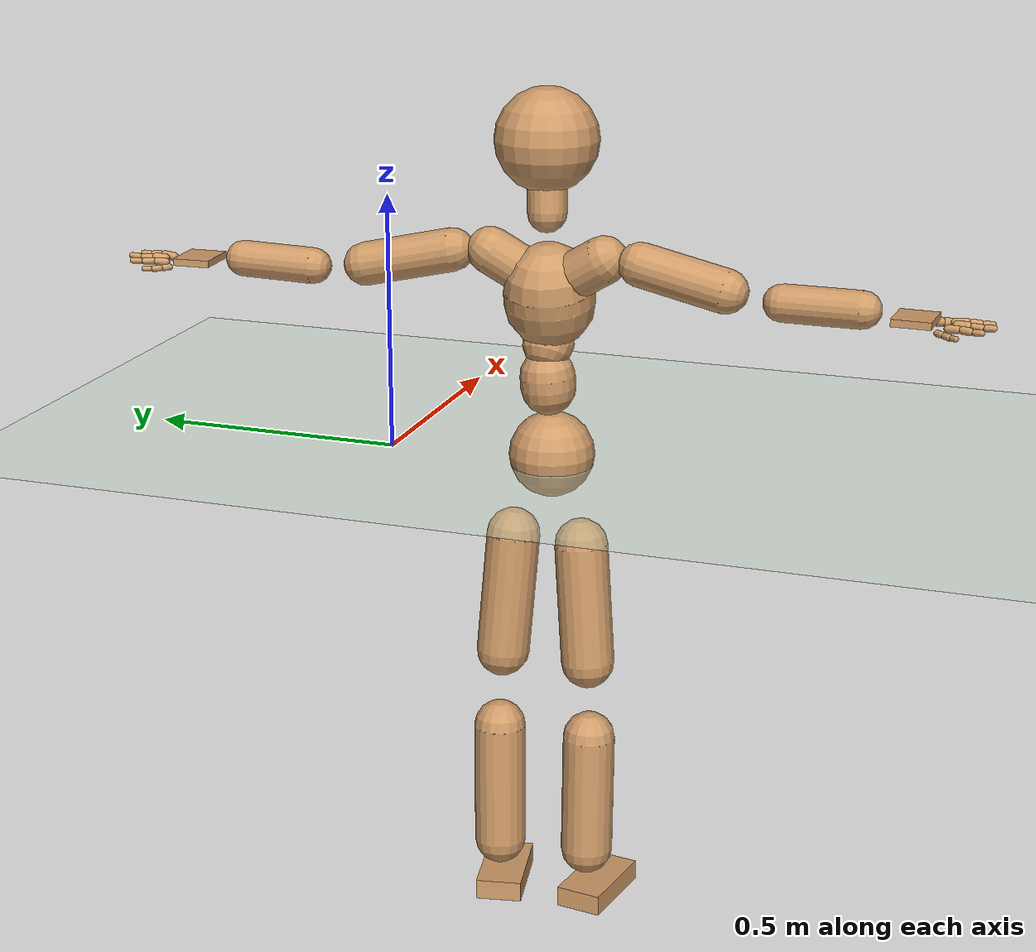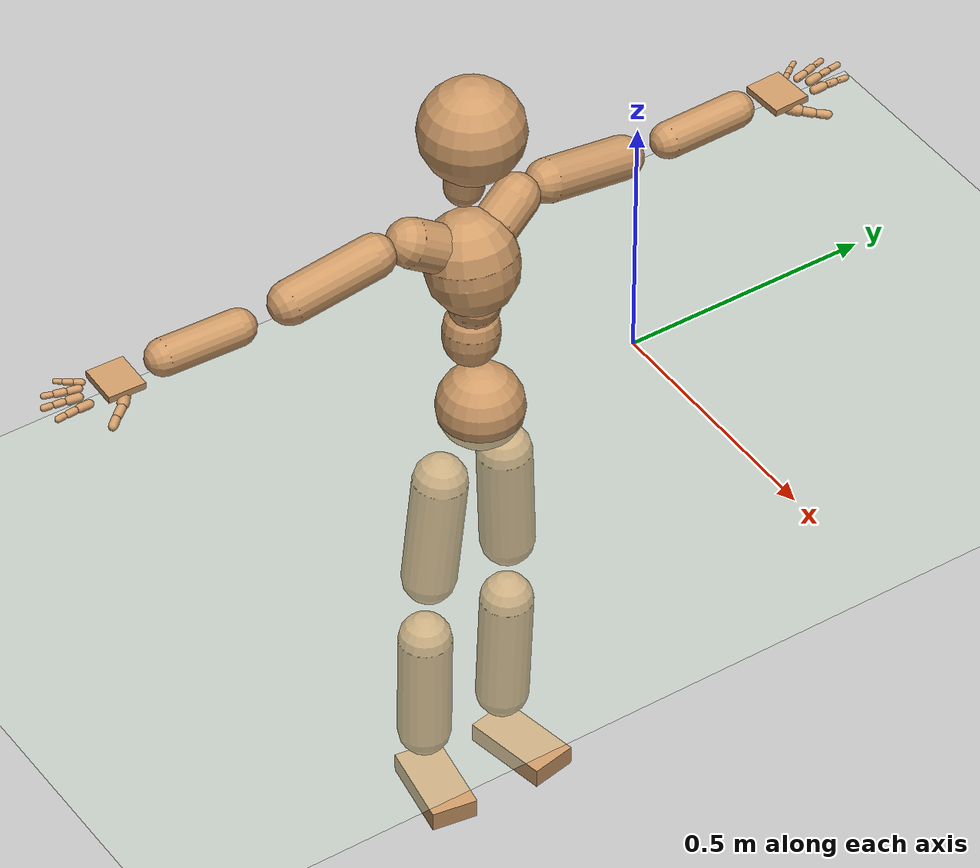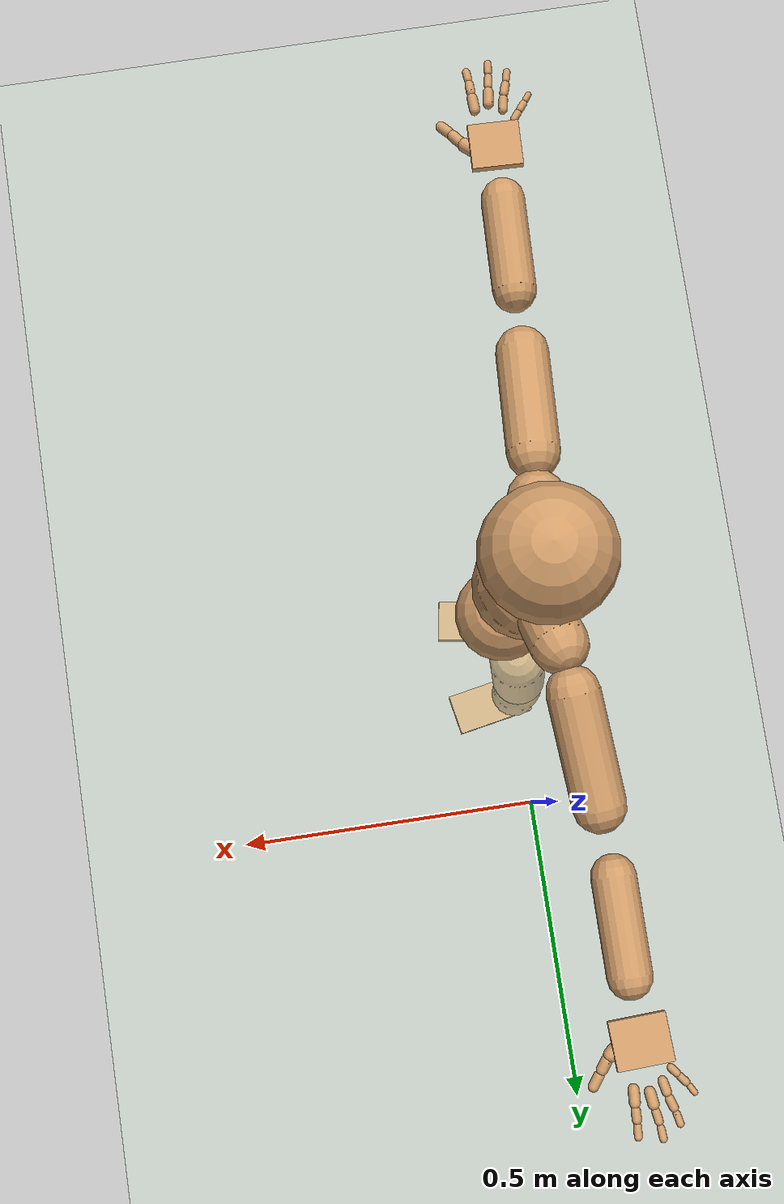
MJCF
<mujoco model="humanoid">
  <compiler coordinate="local" angle="radian"/>
  <default>
    <joint damping="0.0" armature="0.01" stiffness="0.0" limited="true"/>
    <geom conaffinity="1" condim="3" contype="7" margin="0.001" rgba="0.8 0.6 .4 1"/>
  </default>
  <asset>
    <texture type="skybox" builtin="gradient" rgb1=".4 .5 .6" rgb2="0 0 0" width="100" height="100"/>
    <texture builtin="flat" height="1278" mark="cross" markrgb="1 1 1" name="texgeom" random="0.01" rgb1="0.8 0.6 0.4" rgb2="0.8 0.6 0.4" type="cube" width="127"/>
    <texture builtin="checker" height="100" name="texplane" rgb1="0 0 0" rgb2="0.8 0.8 0.8" type="2d" width="100"/>
    <material name="MatPlane" reflectance="0.5" shininess="1" specular="1" texrepeat="60 60" texture="texplane"/>
    <material name="geom" texture="texgeom" texuniform="true"/>
  </asset>
  <worldbody>
    <light cutoff="100" diffuse="1 1 1" dir="-0 0 -1.3" directional="true" exponent="1" pos="0 0 1.3" specular=".1 .1 .1"/>
    <geom conaffinity="1" condim="3" name="floor" pos="0 0 0" rgba="0.8 0.9 0.8 1" size="100 100 .2" type="plane" material="MatPlane"/>
    <body name="Pelvis" pos="0.0003 -0.3318 0.0183">
      <freejoint name="Pelvis"/>
      <geom type="sphere" contype="1" conaffinity="1" density="500" size="0.0830" pos="0.0000 0.0000 0.0000" name="Pelvis"/>
      <body name="L_Hip" pos="-0.0221 0.0638 -0.0839">
        <joint name="L_Hip_x" type="hinge" pos="0 0 0" axis="1 0 0" stiffness="800" damping="80" armature="0.02" range="-180.0000 180.0000"/>
        <joint name="L_Hip_y" type="hinge" pos="0 0 0" axis="0 1 0" stiffness="800" damping="80" armature="0.02" range="-180.0000 180.0000"/>
        <joint name="L_Hip_z" type="hinge" pos="0 0 0" axis="0 0 1" stiffness="800" damping="80" armature="0.02" range="-180.0000 180.0000"/>
        <geom type="capsule" contype="1" conaffinity="1" density="500" fromto="-0.0048 0.0056 -0.0801 -0.0192 0.0225 -0.3202" size="0.0523" name="L_Hip"/>
        <body name="L_Knee" pos="-0.024 0.0281 -0.4003">
          <joint name="L_Knee_x" type="hinge" pos="0 0 0" axis="1 0 0" stiffness="800" damping="80" armature="0.02" range="-180.0000 180.0000"/>
          <joint name="L_Knee_y" type="hinge" pos="0 0 0" axis="0 1 0" stiffness="800" damping="80" armature="0.02" range="-180.0000 180.0000"/>
          <joint name="L_Knee_z" type="hinge" pos="0 0 0" axis="0 0 1" stiffness="800" damping="80" armature="0.02" range="-180.0000 180.0000"/>
          <geom type="capsule" contype="1" conaffinity="1" density="500" fromto="-0.0030 -0.0012 -0.0819 -0.0121 -0.0047 -0.3276" size="0.0512" name="L_Knee"/>
          <body name="L_Ankle" pos="-0.0151 -0.0059 -0.4095">
            <joint name="L_Ankle_x" type="hinge" pos="0 0 0" axis="1 0 0" stiffness="800" damping="80" armature="0.02" range="-180.0000 180.0000"/>
            <joint name="L_Ankle_y" type="hinge" pos="0 0 0" axis="0 1 0" stiffness="800" damping="80" armature="0.02" range="-180.0000 180.0000"/>
            <joint name="L_Ankle_z" type="hinge" pos="0 0 0" axis="0 0 1" stiffness="800" damping="80" armature="0.02" range="-180.0000 180.0000"/>
            <geom type="box" contype="1" conaffinity="1" density="500" pos="0.0554 0.0104 -0.0240" size="0.0871 0.0456 0.0202" quat="0.9957 0.0000 0.0000 0.0931" name="L_Ankle"/>
            <body name="L_Toe" pos="0.1107 0.0209 -0.0481">
              <joint name="L_Toe_x" type="hinge" pos="0 0 0" axis="1 0 0" stiffness="500" damping="50" armature="0.02" range="-180.0000 180.0000"/>
              <joint name="L_Toe_y" type="hinge" pos="0 0 0" axis="0 1 0" stiffness="500" damping="50" armature="0.02" range="-180.0000 180.0000"/>
              <joint name="L_Toe_z" type="hinge" pos="0 0 0" axis="0 0 1" stiffness="500" damping="50" armature="0.02" range="-180.0000 180.0000"/>
              <geom type="box" contype="1" conaffinity="1" density="500" pos="0.0000 0.0000 0.0239" size="0.0009 0.0023 0.001" quat="0.9950 0.0000 0.0000 0.1000" name="L_Toe"/>
            </body>
          </body>
        </body>
      </body>
      <body name="R_Hip" pos="-0.0238 -0.0631 -0.0907">
        <joint name="R_Hip_x" type="hinge" pos="0 0 0" axis="1 0 0" stiffness="800" damping="80" armature="0.02" range="-180.0000 180.0000"/>
        <joint name="R_Hip_y" type="hinge" pos="0 0 0" axis="0 1 0" stiffness="800" damping="80" armature="0.02" range="-180.0000 180.0000"/>
        <joint name="R_Hip_z" type="hinge" pos="0 0 0" axis="0 0 1" stiffness="800" damping="80" armature="0.02" range="-180.0000 180.0000"/>
        <geom type="capsule" contype="1" conaffinity="1" density="500" fromto="-0.0036 -0.0063 -0.0792 -0.0145 -0.0251 -0.3167" size="0.0521" name="R_Hip"/>
        <body name="R_Knee" pos="-0.0181 -0.0314 -0.3958">
          <joint name="R_Knee_x" type="hinge" pos="0 0 0" axis="1 0 0" stiffness="800" damping="80" armature="0.02" range="-180.0000 180.0000"/>
          <joint name="R_Knee_y" type="hinge" pos="0 0 0" axis="0 1 0" stiffness="800" damping="80" armature="0.02" range="-180.0000 180.0000"/>
          <joint name="R_Knee_z" type="hinge" pos="0 0 0" axis="0 0 1" stiffness="800" damping="80" armature="0.02" range="-180.0000 180.0000"/>
          <geom type="capsule" contype="1" conaffinity="1" density="500" fromto="-0.0022 0.0003 -0.0802 -0.0088 0.0010 -0.3208" size="0.0512" name="R_Knee"/>
          <body name="R_Ankle" pos="-0.0109 0.0013 -0.401">
            <joint name="R_Ankle_x" type="hinge" pos="0 0 0" axis="1 0 0" stiffness="800" damping="80" armature="0.02" range="-180.0000 180.0000"/>
            <joint name="R_Ankle_y" type="hinge" pos="0 0 0" axis="0 1 0" stiffness="800" damping="80" armature="0.02" range="-180.0000 180.0000"/>
            <joint name="R_Ankle_z" type="hinge" pos="0 0 0" axis="0 0 1" stiffness="800" damping="80" armature="0.02" range="-180.0000 180.0000"/>
            <geom type="box" contype="1" conaffinity="1" density="500" pos="0.0521 -0.0082 -0.0258" size="0.0871 0.0455 0.0202" quat="0.9969 0.0000 0.0000 -0.0784" name="R_Ankle"/>
            <body name="R_Toe" pos="0.1042 -0.0165 -0.0517">
              <joint name="R_Toe_x" type="hinge" pos="0 0 0" axis="1 0 0" stiffness="500" damping="50" armature="0.02" range="-180.0000 180.0000"/>
              <joint name="R_Toe_y" type="hinge" pos="0 0 0" axis="0 1 0" stiffness="500" damping="50" armature="0.02" range="-180.0000 180.0000"/>
              <joint name="R_Toe_z" type="hinge" pos="0 0 0" axis="0 0 1" stiffness="500" damping="50" armature="0.02" range="-180.0000 180.0000"/>
              <geom type="box" contype="1" conaffinity="1" density="500" pos="0.0000 0.0000 0.0257" size="0.0009 0.0023 0.001" quat="0.9977 0.0000 0.0000 -0.0678" name="R_Toe"/>
            </body>
          </body>
        </body>
      </body>
      <body name="Torso" pos="-0.0246 -0.0044 0.0947">
        <joint name="Torso_x" type="hinge" pos="0 0 0" axis="1 0 0" stiffness="1000" damping="100" armature="0.02" range="-180.0000 180.0000"/>
        <joint name="Torso_y" type="hinge" pos="0 0 0" axis="0 1 0" stiffness="1000" damping="100" armature="0.02" range="-180.0000 180.0000"/>
        <joint name="Torso_z" type="hinge" pos="0 0 0" axis="0 0 1" stiffness="1000" damping="100" armature="0.02" range="-180.0000 180.0000"/>
        <geom type="capsule" contype="1" conaffinity="1" density="500" fromto="-0.0041 0.0044 0.0688 -0.0027 0.0029 0.0458" size="0.0529" name="Torso"/>
        <body name="Spine" pos="-0.0068 0.0073 0.1146">
          <joint name="Spine_x" type="hinge" pos="0 0 0" axis="1 0 0" stiffness="1000" damping="100" armature="0.02" range="-180.0000 180.0000"/>
          <joint name="Spine_y" type="hinge" pos="0 0 0" axis="0 1 0" stiffness="1000" damping="100" armature="0.02" range="-180.0000 180.0000"/>
          <joint name="Spine_z" type="hinge" pos="0 0 0" axis="0 0 1" stiffness="1000" damping="100" armature="0.02" range="-180.0000 180.0000"/>
          <geom type="capsule" contype="1" conaffinity="1" density="500" fromto="0.0132 -0.0025 0.0246 0.0088 -0.0017 0.0164" size="0.0495" name="Spine"/>
          <body name="Chest" pos="0.0219 -0.0042 0.0411">
            <joint name="Chest_x" type="hinge" pos="0 0 0" axis="1 0 0" stiffness="1000" damping="100" armature="0.02" range="-180.0000 180.0000"/>
            <joint name="Chest_y" type="hinge" pos="0 0 0" axis="0 1 0" stiffness="1000" damping="100" armature="0.02" range="-180.0000 180.0000"/>
            <joint name="Chest_z" type="hinge" pos="0 0 0" axis="0 0 1" stiffness="1000" damping="100" armature="0.02" range="-180.0000 180.0000"/>
            <geom type="capsule" contype="1" conaffinity="1" density="500" fromto="-0.0182 -0.0011 0.0835 -0.0121 -0.0008 0.0557" size="0.0866" name="Chest"/>
            <body name="Neck" pos="-0.0397 -0.0045 0.1966">
              <joint name="Neck_x" type="hinge" pos="0 0 0" axis="1 0 0" stiffness="500" damping="50" armature="0.02" range="-180.0000 180.0000"/>
              <joint name="Neck_y" type="hinge" pos="0 0 0" axis="0 1 0" stiffness="500" damping="50" armature="0.02" range="-180.0000 180.0000"/>
              <joint name="Neck_z" type="hinge" pos="0 0 0" axis="0 0 1" stiffness="500" damping="50" armature="0.02" range="-180.0000 180.0000"/>
              <geom type="capsule" contype="1" conaffinity="1" density="500" fromto="0.0040 0.0016 0.0329 0.0159 0.0064 0.1316" size="0.0372" name="Neck"/>
              <body name="Head" pos="0.0199 0.008 0.1646">
                <joint name="Head_x" type="hinge" pos="0 0 0" axis="1 0 0" stiffness="500" damping="50" armature="0.02" range="-180.0000 180.0000"/>
                <joint name="Head_y" type="hinge" pos="0 0 0" axis="0 1 0" stiffness="500" damping="50" armature="0.02" range="-180.0000 180.0000"/>
                <joint name="Head_z" type="hinge" pos="0 0 0" axis="0 0 1" stiffness="500" damping="50" armature="0.02" range="-180.0000 180.0000"/>
                <geom type="sphere" contype="1" conaffinity="1" density="500" size="0.0980" pos="0.0000 0.0000 0.0000" name="Head"/>
              </body>
            </body>
            <body name="L_Thorax" pos="-0.0231 0.0456 0.1126">
              <joint name="L_Thorax_x" type="hinge" pos="0 0 0" axis="1 0 0" stiffness="500" damping="50" armature="0.02" range="-180.0000 180.0000"/>
              <joint name="L_Thorax_y" type="hinge" pos="0 0 0" axis="0 1 0" stiffness="500" damping="50" armature="0.02" range="-180.0000 180.0000"/>
              <joint name="L_Thorax_z" type="hinge" pos="0 0 0" axis="0 0 1" stiffness="500" damping="50" armature="0.02" range="-180.0000 180.0000"/>
              <geom type="capsule" contype="1" conaffinity="1" density="500" fromto="-0.0036 0.0155 0.0097 -0.0145 0.0621 0.0389" size="0.0446" name="L_Thorax"/>
              <body name="L_Shoulder" pos="-0.0181 0.0776 0.0486">
                <joint name="L_Shoulder_x" type="hinge" pos="0 0 0" axis="1 0 0" stiffness="500" damping="50" armature="0.02" range="-180.0000 180.0000"/>
                <joint name="L_Shoulder_y" type="hinge" pos="0 0 0" axis="0 1 0" stiffness="500" damping="50" armature="0.02" range="-180.0000 180.0000"/>
                <joint name="L_Shoulder_z" type="hinge" pos="0 0 0" axis="0 0 1" stiffness="500" damping="50" armature="0.02" range="-180.0000 180.0000"/>
                <geom type="capsule" contype="1" conaffinity="1" density="500" fromto="-0.0052 0.0567 -0.0123 -0.0207 0.2270 -0.0493" size="0.0411" name="L_Shoulder"/>
                <body name="L_Elbow" pos="-0.0259 0.2837 -0.0617">
                  <joint name="L_Elbow_x" type="hinge" pos="0 0 0" axis="1 0 0" stiffness="500" damping="50" armature="0.02" range="-720.0000 720.0000"/>
                  <joint name="L_Elbow_y" type="hinge" pos="0 0 0" axis="0 1 0" stiffness="500" damping="50" armature="0.02" range="-720.0000 720.0000"/>
                  <joint name="L_Elbow_z" type="hinge" pos="0 0 0" axis="0 0 1" stiffness="500" damping="50" armature="0.02" range="-720.0000 720.0000"/>
                  <geom type="capsule" contype="1" conaffinity="1" density="500" fromto="0.0001 0.0487 0.0011 0.0005 0.1949 0.0045" size="0.0344" name="L_Elbow"/>
                  <body name="L_Wrist" pos="0.0006 0.2436 0.0057">
                    <joint name="L_Wrist_x" type="hinge" pos="0 0 0" axis="1 0 0" stiffness="300" damping="30" armature="0.02" range="-180.0000 180.0000"/>
                    <joint name="L_Wrist_y" type="hinge" pos="0 0 0" axis="0 1 0" stiffness="300" damping="30" armature="0.02" range="-180.0000 180.0000"/>
                    <joint name="L_Wrist_z" type="hinge" pos="0 0 0" axis="0 0 1" stiffness="300" damping="30" armature="0.02" range="-180.0000 180.0000"/>
                    <geom type="box" contype="1" conaffinity="1" density="500" pos="-0.0020 0.0457 -0.0088" size="0.0363 0.043 0.0066" quat="0.7226 0.0000 0.0000 -0.6913" name="L_Wrist"/>
                    <body name="L_Index1" pos="0.0189 0.1066 -0.0157">
                      <joint name="L_Index1_x" type="hinge" pos="0 0 0" axis="1 0 0" stiffness="100" damping="10" armature="0.02" range="-180.0000 180.0000"/>
                      <joint name="L_Index1_y" type="hinge" pos="0 0 0" axis="0 1 0" stiffness="100" damping="10" armature="0.02" range="-180.0000 180.0000"/>
                      <joint name="L_Index1_z" type="hinge" pos="0 0 0" axis="0 0 1" stiffness="100" damping="10" armature="0.02" range="-180.0000 180.0000"/>
                      <geom type="capsule" contype="1" conaffinity="1" density="500" fromto="0.0005 0.0063 0.0005 0.0020 0.0253 0.0020" size="0.0084" name="L_Index1"/>
                      <body name="L_Index2" pos="0.0025 0.0316 0.0026">
                        <joint name="L_Index2_x" type="hinge" pos="0 0 0" axis="1 0 0" stiffness="100" damping="10" armature="0.02" range="-180.0000 180.0000"/>
                        <joint name="L_Index2_y" type="hinge" pos="0 0 0" axis="0 1 0" stiffness="100" damping="10" armature="0.02" range="-180.0000 180.0000"/>
                        <joint name="L_Index2_z" type="hinge" pos="0 0 0" axis="0 0 1" stiffness="100" damping="10" armature="0.02" range="-180.0000 180.0000"/>
                        <geom type="capsule" contype="1" conaffinity="1" density="500" fromto="0.0001 0.0045 -0.0003 0.0004 0.0179 -0.0012" size="0.0071" name="L_Index2"/>
                        <body name="L_Index3" pos="0.0004 0.0224 -0.0014">
                          <joint name="L_Index3_x" type="hinge" pos="0 0 0" axis="1 0 0" stiffness="100" damping="10" armature="0.02" range="-180.0000 180.0000"/>
                          <joint name="L_Index3_y" type="hinge" pos="0 0 0" axis="0 1 0" stiffness="100" damping="10" armature="0.02" range="-180.0000 180.0000"/>
                          <joint name="L_Index3_z" type="hinge" pos="0 0 0" axis="0 0 1" stiffness="100" damping="10" armature="0.02" range="-180.0000 180.0000"/>
                          <geom type="capsule" contype="1" conaffinity="1" density="500" fromto="0.0005 0.0049 0.0001 0.0020 0.0195 0.0004" size="0.006" name="L_Index3"/>
                        </body>
                      </body>
                    </body>
                    <body name="L_Middle1" pos="-0.0025 0.1137 -0.0136">
                      <joint name="L_Middle1_x" type="hinge" pos="0 0 0" axis="1 0 0" stiffness="100" damping="10" armature="0.02" range="-180.0000 180.0000"/>
                      <joint name="L_Middle1_y" type="hinge" pos="0 0 0" axis="0 1 0" stiffness="100" damping="10" armature="0.02" range="-180.0000 180.0000"/>
                      <joint name="L_Middle1_z" type="hinge" pos="0 0 0" axis="0 0 1" stiffness="100" damping="10" armature="0.02" range="-180.0000 180.0000"/>
                      <geom type="capsule" contype="1" conaffinity="1" density="500" fromto="-0.0008 0.0060 0.0002 -0.0032 0.0240 0.0009" size="0.0085" name="L_Middle1"/>
                      <body name="L_Middle2" pos="-0.004 0.03 0.0012">
                        <joint name="L_Middle2_x" type="hinge" pos="0 0 0" axis="1 0 0" stiffness="100" damping="10" armature="0.02" range="-180.0000 180.0000"/>
                        <joint name="L_Middle2_y" type="hinge" pos="0 0 0" axis="0 1 0" stiffness="100" damping="10" armature="0.02" range="-180.0000 180.0000"/>
                        <joint name="L_Middle2_z" type="hinge" pos="0 0 0" axis="0 0 1" stiffness="100" damping="10" armature="0.02" range="-180.0000 180.0000"/>
                        <geom type="capsule" contype="1" conaffinity="1" density="500" fromto="-0.0008 0.0047 -0.0001 -0.0030 0.0187 -0.0004" size="0.0065" name="L_Middle2"/>
                        <body name="L_Middle3" pos="-0.0038 0.0234 -0.0004">
                          <joint name="L_Middle3_x" type="hinge" pos="0 0 0" axis="1 0 0" stiffness="100" damping="10" armature="0.02" range="-180.0000 180.0000"/>
                          <joint name="L_Middle3_y" type="hinge" pos="0 0 0" axis="0 1 0" stiffness="100" damping="10" armature="0.02" range="-180.0000 180.0000"/>
                          <joint name="L_Middle3_z" type="hinge" pos="0 0 0" axis="0 0 1" stiffness="100" damping="10" armature="0.02" range="-180.0000 180.0000"/>
                          <geom type="capsule" contype="1" conaffinity="1" density="500" fromto="-0.0004 0.0051 0.0003 -0.0014 0.0203 0.0012" size="0.0059" name="L_Middle3"/>
                        </body>
                      </body>
                    </body>
                    <body name="L_Pinky1" pos="-0.0384 0.0887 -0.0208">
                      <joint name="L_Pinky1_x" type="hinge" pos="0 0 0" axis="1 0 0" stiffness="100" damping="10" armature="0.02" range="-180.0000 180.0000"/>
                      <joint name="L_Pinky1_y" type="hinge" pos="0 0 0" axis="0 1 0" stiffness="100" damping="10" armature="0.02" range="-180.0000 180.0000"/>
                      <joint name="L_Pinky1_z" type="hinge" pos="0 0 0" axis="0 0 1" stiffness="100" damping="10" armature="0.02" range="-180.0000 180.0000"/>
                      <geom type="capsule" contype="1" conaffinity="1" density="500" fromto="-0.0023 0.0029 -0.0001 -0.0093 0.0117 -0.0002" size="0.0061" name="L_Pinky1"/>
                      <body name="L_Pinky2" pos="-0.0116 0.0146 -0.0003">
                        <joint name="L_Pinky2_x" type="hinge" pos="0 0 0" axis="1 0 0" stiffness="100" damping="10" armature="0.02" range="-180.0000 180.0000"/>
                        <joint name="L_Pinky2_y" type="hinge" pos="0 0 0" axis="0 1 0" stiffness="100" damping="10" armature="0.02" range="-180.0000 180.0000"/>
                        <joint name="L_Pinky2_z" type="hinge" pos="0 0 0" axis="0 0 1" stiffness="100" damping="10" armature="0.02" range="-180.0000 180.0000"/>
                        <geom type="capsule" contype="1" conaffinity="1" density="500" fromto="-0.0023 0.0030 -0.0001 -0.0092 0.0118 -0.0006" size="0.006" name="L_Pinky2"/>
                        <body name="L_Pinky3" pos="-0.0115 0.0148 -0.0007">
                          <joint name="L_Pinky3_x" type="hinge" pos="0 0 0" axis="1 0 0" stiffness="100" damping="10" armature="0.02" range="-180.0000 180.0000"/>
                          <joint name="L_Pinky3_y" type="hinge" pos="0 0 0" axis="0 1 0" stiffness="100" damping="10" armature="0.02" range="-180.0000 180.0000"/>
                          <joint name="L_Pinky3_z" type="hinge" pos="0 0 0" axis="0 0 1" stiffness="100" damping="10" armature="0.02" range="-180.0000 180.0000"/>
                          <geom type="capsule" contype="1" conaffinity="1" density="500" fromto="-0.0019 0.0034 0.0003 -0.0076 0.0134 0.0010" size="0.0048" name="L_Pinky3"/>
                        </body>
                      </body>
                    </body>
                    <body name="L_Ring1" pos="-0.0236 0.1018 -0.0161">
                      <joint name="L_Ring1_x" type="hinge" pos="0 0 0" axis="1 0 0" stiffness="100" damping="10" armature="0.02" range="-180.0000 180.0000"/>
                      <joint name="L_Ring1_y" type="hinge" pos="0 0 0" axis="0 1 0" stiffness="100" damping="10" armature="0.02" range="-180.0000 180.0000"/>
                      <joint name="L_Ring1_z" type="hinge" pos="0 0 0" axis="0 0 1" stiffness="100" damping="10" armature="0.02" range="-180.0000 180.0000"/>
                      <geom type="capsule" contype="1" conaffinity="1" density="500" fromto="-0.0011 0.0054 0.0004 -0.0042 0.0218 0.0014" size="0.0073" name="L_Ring1"/>
                      <body name="L_Ring2" pos="-0.0053 0.0272 0.0018">
                        <joint name="L_Ring2_x" type="hinge" pos="0 0 0" axis="1 0 0" stiffness="100" damping="10" armature="0.02" range="-180.0000 180.0000"/>
                        <joint name="L_Ring2_y" type="hinge" pos="0 0 0" axis="0 1 0" stiffness="100" damping="10" armature="0.02" range="-180.0000 180.0000"/>
                        <joint name="L_Ring2_z" type="hinge" pos="0 0 0" axis="0 0 1" stiffness="100" damping="10" armature="0.02" range="-180.0000 180.0000"/>
                        <geom type="capsule" contype="1" conaffinity="1" density="500" fromto="-0.0014 0.0045 -0.0001 -0.0057 0.0179 -0.0006" size="0.0069" name="L_Ring2"/>
                        <body name="L_Ring3" pos="-0.0071 0.0223 -0.0007">
                          <joint name="L_Ring3_x" type="hinge" pos="0 0 0" axis="1 0 0" stiffness="100" damping="10" armature="0.02" range="-180.0000 180.0000"/>
                          <joint name="L_Ring3_y" type="hinge" pos="0 0 0" axis="0 1 0" stiffness="100" damping="10" armature="0.02" range="-180.0000 180.0000"/>
                          <joint name="L_Ring3_z" type="hinge" pos="0 0 0" axis="0 0 1" stiffness="100" damping="10" armature="0.02" range="-180.0000 180.0000"/>
                          <geom type="capsule" contype="1" conaffinity="1" density="500" fromto="-0.0010 0.0049 0.0003 -0.0041 0.0195 0.0010" size="0.0056" name="L_Ring3"/>
                        </body>
                      </body>
                    </body>
                    <body name="L_Thumb1" pos="0.0254 0.0464 -0.0221">
                      <joint name="L_Thumb1_x" type="hinge" pos="0 0 0" axis="1 0 0" stiffness="100" damping="10" armature="0.02" range="-180.0000 180.0000"/>
                      <joint name="L_Thumb1_y" type="hinge" pos="0 0 0" axis="0 1 0" stiffness="100" damping="10" armature="0.02" range="-180.0000 180.0000"/>
                      <joint name="L_Thumb1_z" type="hinge" pos="0 0 0" axis="0 0 1" stiffness="100" damping="10" armature="0.02" range="-180.0000 180.0000"/>
                      <geom type="capsule" contype="1" conaffinity="1" density="500" fromto="0.0046 0.0036 0.0000 0.0183 0.0143 0.0001" size="0.0112" name="L_Thumb1"/>
                      <body name="L_Thumb2" pos="0.0229 0.0178 0.0002">
                        <joint name="L_Thumb2_x" type="hinge" pos="0 0 0" axis="1 0 0" stiffness="100" damping="10" armature="0.02" range="-180.0000 180.0000"/>
                        <joint name="L_Thumb2_y" type="hinge" pos="0 0 0" axis="0 1 0" stiffness="100" damping="10" armature="0.02" range="-180.0000 180.0000"/>
                        <joint name="L_Thumb2_z" type="hinge" pos="0 0 0" axis="0 0 1" stiffness="100" damping="10" armature="0.02" range="-180.0000 180.0000"/>
                        <geom type="capsule" contype="1" conaffinity="1" density="500" fromto="0.0028 0.0042 -0.0011 0.0114 0.0167 -0.0044" size="0.0088" name="L_Thumb2"/>
                        <body name="L_Thumb3" pos="0.0142 0.0209 -0.0055">
                          <joint name="L_Thumb3_x" type="hinge" pos="0 0 0" axis="1 0 0" stiffness="100" damping="10" armature="0.02" range="-180.0000 180.0000"/>
                          <joint name="L_Thumb3_y" type="hinge" pos="0 0 0" axis="0 1 0" stiffness="100" damping="10" armature="0.02" range="-180.0000 180.0000"/>
                          <joint name="L_Thumb3_z" type="hinge" pos="0 0 0" axis="0 0 1" stiffness="100" damping="10" armature="0.02" range="-180.0000 180.0000"/>
                          <geom type="capsule" contype="1" conaffinity="1" density="500" fromto="0.0032 0.0046 -0.0007 0.0130 0.0183 -0.0028" size="0.0082" name="L_Thumb3"/>
                        </body>
                      </body>
                    </body>
                  </body>
                </body>
              </body>
            </body>
            <body name="R_Thorax" pos="-0.0282 -0.0467 0.1085">
              <joint name="R_Thorax_x" type="hinge" pos="0 0 0" axis="1 0 0" stiffness="500" damping="50" armature="0.02" range="-180.0000 180.0000"/>
              <joint name="R_Thorax_y" type="hinge" pos="0 0 0" axis="0 1 0" stiffness="500" damping="50" armature="0.02" range="-180.0000 180.0000"/>
              <joint name="R_Thorax_z" type="hinge" pos="0 0 0" axis="0 0 1" stiffness="500" damping="50" armature="0.02" range="-180.0000 180.0000"/>
              <geom type="capsule" contype="1" conaffinity="1" density="500" fromto="-0.0026 -0.0166 0.0102 -0.0105 -0.0665 0.0409" size="0.0457" name="R_Thorax"/>
              <body name="R_Shoulder" pos="-0.0132 -0.0832 0.0511">
                <joint name="R_Shoulder_x" type="hinge" pos="0 0 0" axis="1 0 0" stiffness="500" damping="50" armature="0.02" range="-180.0000 180.0000"/>
                <joint name="R_Shoulder_y" type="hinge" pos="0 0 0" axis="0 1 0" stiffness="500" damping="50" armature="0.02" range="-180.0000 180.0000"/>
                <joint name="R_Shoulder_z" type="hinge" pos="0 0 0" axis="0 0 1" stiffness="500" damping="50" armature="0.02" range="-180.0000 180.0000"/>
                <geom type="capsule" contype="1" conaffinity="1" density="500" fromto="-0.0037 -0.0550 -0.0113 -0.0149 -0.2201 -0.0453" size="0.0414" name="R_Shoulder"/>
                <body name="R_Elbow" pos="-0.0187 -0.2751 -0.0566">
                  <joint name="R_Elbow_x" type="hinge" pos="0 0 0" axis="1 0 0" stiffness="500" damping="50" armature="0.02" range="-720.0000 720.0000"/>
                  <joint name="R_Elbow_y" type="hinge" pos="0 0 0" axis="0 1 0" stiffness="500" damping="50" armature="0.02" range="-720.0000 720.0000"/>
                  <joint name="R_Elbow_z" type="hinge" pos="0 0 0" axis="0 0 1" stiffness="500" damping="50" armature="0.02" range="-720.0000 720.0000"/>
                  <geom type="capsule" contype="1" conaffinity="1" density="500" fromto="-0.0015 -0.0490 0.0003 -0.0061 -0.1959 0.0012" size="0.0346" name="R_Elbow"/>
                  <body name="R_Wrist" pos="-0.0076 -0.2448 0.0015">
                    <joint name="R_Wrist_x" type="hinge" pos="0 0 0" axis="1 0 0" stiffness="300" damping="30" armature="0.02" range="-180.0000 180.0000"/>
                    <joint name="R_Wrist_y" type="hinge" pos="0 0 0" axis="0 1 0" stiffness="300" damping="30" armature="0.02" range="-180.0000 180.0000"/>
                    <joint name="R_Wrist_z" type="hinge" pos="0 0 0" axis="0 0 1" stiffness="300" damping="30" armature="0.02" range="-180.0000 180.0000"/>
                    <geom type="box" contype="1" conaffinity="1" density="500" pos="-0.0014 -0.0450 -0.0085" size="0.0363 0.0403 0.0068" quat="0.7181 0.0000 0.0000 0.6959" name="R_Wrist"/>
                    <body name="R_Index1" pos="0.0202 -0.1053 -0.0151">
                      <joint name="R_Index1_x" type="hinge" pos="0 0 0" axis="1 0 0" stiffness="100" damping="10" armature="0.02" range="-180.0000 180.0000"/>
                      <joint name="R_Index1_y" type="hinge" pos="0 0 0" axis="0 1 0" stiffness="100" damping="10" armature="0.02" range="-180.0000 180.0000"/>
                      <joint name="R_Index1_z" type="hinge" pos="0 0 0" axis="0 0 1" stiffness="100" damping="10" armature="0.02" range="-180.0000 180.0000"/>
                      <geom type="capsule" contype="1" conaffinity="1" density="500" fromto="0.0005 -0.0063 0.0005 0.0020 -0.0253 0.0020" size="0.0084" name="R_Index1"/>
                      <body name="R_Index2" pos="0.0025 -0.0316 0.0026">
                        <joint name="R_Index2_x" type="hinge" pos="0 0 0" axis="1 0 0" stiffness="100" damping="10" armature="0.02" range="-180.0000 180.0000"/>
                        <joint name="R_Index2_y" type="hinge" pos="0 0 0" axis="0 1 0" stiffness="100" damping="10" armature="0.02" range="-180.0000 180.0000"/>
                        <joint name="R_Index2_z" type="hinge" pos="0 0 0" axis="0 0 1" stiffness="100" damping="10" armature="0.02" range="-180.0000 180.0000"/>
                        <geom type="capsule" contype="1" conaffinity="1" density="500" fromto="0.0001 -0.0045 -0.0003 0.0004 -0.0179 -0.0012" size="0.0071" name="R_Index2"/>
                        <body name="R_Index3" pos="0.0004 -0.0224 -0.0014">
                          <joint name="R_Index3_x" type="hinge" pos="0 0 0" axis="1 0 0" stiffness="100" damping="10" armature="0.02" range="-180.0000 180.0000"/>
                          <joint name="R_Index3_y" type="hinge" pos="0 0 0" axis="0 1 0" stiffness="100" damping="10" armature="0.02" range="-180.0000 180.0000"/>
                          <joint name="R_Index3_z" type="hinge" pos="0 0 0" axis="0 0 1" stiffness="100" damping="10" armature="0.02" range="-180.0000 180.0000"/>
                          <geom type="capsule" contype="1" conaffinity="1" density="500" fromto="0.0005 -0.0041 0.0001 0.0020 -0.0163 0.0004" size="0.0063" name="R_Index3"/>
                        </body>
                      </body>
                    </body>
                    <body name="R_Middle1" pos="-0.0013 -0.1124 -0.013">
                      <joint name="R_Middle1_x" type="hinge" pos="0 0 0" axis="1 0 0" stiffness="100" damping="10" armature="0.02" range="-180.0000 180.0000"/>
                      <joint name="R_Middle1_y" type="hinge" pos="0 0 0" axis="0 1 0" stiffness="100" damping="10" armature="0.02" range="-180.0000 180.0000"/>
                      <joint name="R_Middle1_z" type="hinge" pos="0 0 0" axis="0 0 1" stiffness="100" damping="10" armature="0.02" range="-180.0000 180.0000"/>
                      <geom type="capsule" contype="1" conaffinity="1" density="500" fromto="-0.0008 -0.0060 0.0002 -0.0032 -0.0240 0.0009" size="0.0085" name="R_Middle1"/>
                      <body name="R_Middle2" pos="-0.004 -0.03 0.0012">
                        <joint name="R_Middle2_x" type="hinge" pos="0 0 0" axis="1 0 0" stiffness="100" damping="10" armature="0.02" range="-180.0000 180.0000"/>
                        <joint name="R_Middle2_y" type="hinge" pos="0 0 0" axis="0 1 0" stiffness="100" damping="10" armature="0.02" range="-180.0000 180.0000"/>
                        <joint name="R_Middle2_z" type="hinge" pos="0 0 0" axis="0 0 1" stiffness="100" damping="10" armature="0.02" range="-180.0000 180.0000"/>
                        <geom type="capsule" contype="1" conaffinity="1" density="500" fromto="-0.0008 -0.0047 -0.0001 -0.0030 -0.0187 -0.0004" size="0.0065" name="R_Middle2"/>
                        <body name="R_Middle3" pos="-0.0038 -0.0234 -0.0005">
                          <joint name="R_Middle3_x" type="hinge" pos="0 0 0" axis="1 0 0" stiffness="100" damping="10" armature="0.02" range="-180.0000 180.0000"/>
                          <joint name="R_Middle3_y" type="hinge" pos="0 0 0" axis="0 1 0" stiffness="100" damping="10" armature="0.02" range="-180.0000 180.0000"/>
                          <joint name="R_Middle3_z" type="hinge" pos="0 0 0" axis="0 0 1" stiffness="100" damping="10" armature="0.02" range="-180.0000 180.0000"/>
                          <geom type="capsule" contype="1" conaffinity="1" density="500" fromto="-0.0004 -0.0043 0.0003 -0.0014 -0.0171 0.0012" size="0.0062" name="R_Middle3"/>
                        </body>
                      </body>
                    </body>
                    <body name="R_Pinky1" pos="-0.0372 -0.0873 -0.0201">
                      <joint name="R_Pinky1_x" type="hinge" pos="0 0 0" axis="1 0 0" stiffness="100" damping="10" armature="0.02" range="-180.0000 180.0000"/>
                      <joint name="R_Pinky1_y" type="hinge" pos="0 0 0" axis="0 1 0" stiffness="100" damping="10" armature="0.02" range="-180.0000 180.0000"/>
                      <joint name="R_Pinky1_z" type="hinge" pos="0 0 0" axis="0 0 1" stiffness="100" damping="10" armature="0.02" range="-180.0000 180.0000"/>
                      <geom type="capsule" contype="1" conaffinity="1" density="500" fromto="-0.0023 -0.0029 -0.0001 -0.0093 -0.0117 -0.0002" size="0.0061" name="R_Pinky1"/>
                      <body name="R_Pinky2" pos="-0.0116 -0.0146 -0.0003">
                        <joint name="R_Pinky2_x" type="hinge" pos="0 0 0" axis="1 0 0" stiffness="100" damping="10" armature="0.02" range="-180.0000 180.0000"/>
                        <joint name="R_Pinky2_y" type="hinge" pos="0 0 0" axis="0 1 0" stiffness="100" damping="10" armature="0.02" range="-180.0000 180.0000"/>
                        <joint name="R_Pinky2_z" type="hinge" pos="0 0 0" axis="0 0 1" stiffness="100" damping="10" armature="0.02" range="-180.0000 180.0000"/>
                        <geom type="capsule" contype="1" conaffinity="1" density="500" fromto="-0.0023 -0.0030 -0.0001 -0.0092 -0.0118 -0.0006" size="0.006" name="R_Pinky2"/>
                        <body name="R_Pinky3" pos="-0.0115 -0.0148 -0.0007">
                          <joint name="R_Pinky3_x" type="hinge" pos="0 0 0" axis="1 0 0" stiffness="100" damping="10" armature="0.02" range="-180.0000 180.0000"/>
                          <joint name="R_Pinky3_y" type="hinge" pos="0 0 0" axis="0 1 0" stiffness="100" damping="10" armature="0.02" range="-180.0000 180.0000"/>
                          <joint name="R_Pinky3_z" type="hinge" pos="0 0 0" axis="0 0 1" stiffness="100" damping="10" armature="0.02" range="-180.0000 180.0000"/>
                          <geom type="capsule" contype="1" conaffinity="1" density="500" fromto="-0.0019 -0.0026 0.0003 -0.0076 -0.0102 0.0010" size="0.005" name="R_Pinky3"/>
                        </body>
                      </body>
                    </body>
                    <body name="R_Ring1" pos="-0.0224 -0.1005 -0.0154">
                      <joint name="R_Ring1_x" type="hinge" pos="0 0 0" axis="1 0 0" stiffness="100" damping="10" armature="0.02" range="-180.0000 180.0000"/>
                      <joint name="R_Ring1_y" type="hinge" pos="0 0 0" axis="0 1 0" stiffness="100" damping="10" armature="0.02" range="-180.0000 180.0000"/>
                      <joint name="R_Ring1_z" type="hinge" pos="0 0 0" axis="0 0 1" stiffness="100" damping="10" armature="0.02" range="-180.0000 180.0000"/>
                      <geom type="capsule" contype="1" conaffinity="1" density="500" fromto="-0.0011 -0.0054 0.0004 -0.0042 -0.0218 0.0014" size="0.0073" name="R_Ring1"/>
                      <body name="R_Ring2" pos="-0.0053 -0.0272 0.0018">
                        <joint name="R_Ring2_x" type="hinge" pos="0 0 0" axis="1 0 0" stiffness="100" damping="10" armature="0.02" range="-180.0000 180.0000"/>
                        <joint name="R_Ring2_y" type="hinge" pos="0 0 0" axis="0 1 0" stiffness="100" damping="10" armature="0.02" range="-180.0000 180.0000"/>
                        <joint name="R_Ring2_z" type="hinge" pos="0 0 0" axis="0 0 1" stiffness="100" damping="10" armature="0.02" range="-180.0000 180.0000"/>
                        <geom type="capsule" contype="1" conaffinity="1" density="500" fromto="-0.0014 -0.0045 -0.0001 -0.0057 -0.0179 -0.0006" size="0.007" name="R_Ring2"/>
                        <body name="R_Ring3" pos="-0.0071 -0.0223 -0.0007">
                          <joint name="R_Ring3_x" type="hinge" pos="0 0 0" axis="1 0 0" stiffness="100" damping="10" armature="0.02" range="-180.0000 180.0000"/>
                          <joint name="R_Ring3_y" type="hinge" pos="0 0 0" axis="0 1 0" stiffness="100" damping="10" armature="0.02" range="-180.0000 180.0000"/>
                          <joint name="R_Ring3_z" type="hinge" pos="0 0 0" axis="0 0 1" stiffness="100" damping="10" armature="0.02" range="-180.0000 180.0000"/>
                          <geom type="capsule" contype="1" conaffinity="1" density="500" fromto="-0.0010 -0.0041 0.0003 -0.0041 -0.0163 0.0010" size="0.0058" name="R_Ring3"/>
                        </body>
                      </body>
                    </body>
                    <body name="R_Thumb1" pos="0.0266 -0.045 -0.0214">
                      <joint name="R_Thumb1_x" type="hinge" pos="0 0 0" axis="1 0 0" stiffness="100" damping="10" armature="0.02" range="-180.0000 180.0000"/>
                      <joint name="R_Thumb1_y" type="hinge" pos="0 0 0" axis="0 1 0" stiffness="100" damping="10" armature="0.02" range="-180.0000 180.0000"/>
                      <joint name="R_Thumb1_z" type="hinge" pos="0 0 0" axis="0 0 1" stiffness="100" damping="10" armature="0.02" range="-180.0000 180.0000"/>
                      <geom type="capsule" contype="1" conaffinity="1" density="500" fromto="0.0046 -0.0036 0.0000 0.0183 -0.0143 0.0001" size="0.0112" name="R_Thumb1"/>
                      <body name="R_Thumb2" pos="0.0229 -0.0178 0.0002">
                        <joint name="R_Thumb2_x" type="hinge" pos="0 0 0" axis="1 0 0" stiffness="100" damping="10" armature="0.02" range="-180.0000 180.0000"/>
                        <joint name="R_Thumb2_y" type="hinge" pos="0 0 0" axis="0 1 0" stiffness="100" damping="10" armature="0.02" range="-180.0000 180.0000"/>
                        <joint name="R_Thumb2_z" type="hinge" pos="0 0 0" axis="0 0 1" stiffness="100" damping="10" armature="0.02" range="-180.0000 180.0000"/>
                        <geom type="capsule" contype="1" conaffinity="1" density="500" fromto="0.0028 -0.0042 -0.0011 0.0114 -0.0167 -0.0044" size="0.0088" name="R_Thumb2"/>
                        <body name="R_Thumb3" pos="0.0142 -0.0209 -0.0055">
                          <joint name="R_Thumb3_x" type="hinge" pos="0 0 0" axis="1 0 0" stiffness="100" damping="10" armature="0.02" range="-180.0000 180.0000"/>
                          <joint name="R_Thumb3_y" type="hinge" pos="0 0 0" axis="0 1 0" stiffness="100" damping="10" armature="0.02" range="-180.0000 180.0000"/>
                          <joint name="R_Thumb3_z" type="hinge" pos="0 0 0" axis="0 0 1" stiffness="100" damping="10" armature="0.02" range="-180.0000 180.0000"/>
                          <geom type="capsule" contype="1" conaffinity="1" density="500" fromto="0.0032 -0.0038 -0.0007 0.0130 -0.0151 -0.0028" size="0.0085" name="R_Thumb3"/>
                        </body>
                      </body>
                    </body>
                  </body>
                </body>
              </body>
            </body>
          </body>
        </body>
      </body>
    </body>
  </worldbody>
  <actuator>
    <motor name="L_Hip_x" joint="L_Hip_x" gear="500"/>
    <motor name="L_Hip_y" joint="L_Hip_y" gear="500"/>
    <motor name="L_Hip_z" joint="L_Hip_z" gear="500"/>
    <motor name="L_Knee_x" joint="L_Knee_x" gear="500"/>
    <motor name="L_Knee_y" joint="L_Knee_y" gear="500"/>
    <motor name="L_Knee_z" joint="L_Knee_z" gear="500"/>
    <motor name="L_Ankle_x" joint="L_Ankle_x" gear="500"/>
    <motor name="L_Ankle_y" joint="L_Ankle_y" gear="500"/>
    <motor name="L_Ankle_z" joint="L_Ankle_z" gear="500"/>
    <motor name="L_Toe_x" joint="L_Toe_x" gear="500"/>
    <motor name="L_Toe_y" joint="L_Toe_y" gear="500"/>
    <motor name="L_Toe_z" joint="L_Toe_z" gear="500"/>
    <motor name="R_Hip_x" joint="R_Hip_x" gear="500"/>
    <motor name="R_Hip_y" joint="R_Hip_y" gear="500"/>
    <motor name="R_Hip_z" joint="R_Hip_z" gear="500"/>
    <motor name="R_Knee_x" joint="R_Knee_x" gear="500"/>
    <motor name="R_Knee_y" joint="R_Knee_y" gear="500"/>
    <motor name="R_Knee_z" joint="R_Knee_z" gear="500"/>
    <motor name="R_Ankle_x" joint="R_Ankle_x" gear="500"/>
    <motor name="R_Ankle_y" joint="R_Ankle_y" gear="500"/>
    <motor name="R_Ankle_z" joint="R_Ankle_z" gear="500"/>
    <motor name="R_Toe_x" joint="R_Toe_x" gear="500"/>
    <motor name="R_Toe_y" joint="R_Toe_y" gear="500"/>
    <motor name="R_Toe_z" joint="R_Toe_z" gear="500"/>
    <motor name="Torso_x" joint="Torso_x" gear="500"/>
    <motor name="Torso_y" joint="Torso_y" gear="500"/>
    <motor name="Torso_z" joint="Torso_z" gear="500"/>
    <motor name="Spine_x" joint="Spine_x" gear="500"/>
    <motor name="Spine_y" joint="Spine_y" gear="500"/>
    <motor name="Spine_z" joint="Spine_z" gear="500"/>
    <motor name="Chest_x" joint="Chest_x" gear="500"/>
    <motor name="Chest_y" joint="Chest_y" gear="500"/>
    <motor name="Chest_z" joint="Chest_z" gear="500"/>
    <motor name="Neck_x" joint="Neck_x" gear="500"/>
    <motor name="Neck_y" joint="Neck_y" gear="500"/>
    <motor name="Neck_z" joint="Neck_z" gear="500"/>
    <motor name="Head_x" joint="Head_x" gear="500"/>
    <motor name="Head_y" joint="Head_y" gear="500"/>
    <motor name="Head_z" joint="Head_z" gear="500"/>
    <motor name="L_Thorax_x" joint="L_Thorax_x" gear="500"/>
    <motor name="L_Thorax_y" joint="L_Thorax_y" gear="500"/>
    <motor name="L_Thorax_z" joint="L_Thorax_z" gear="500"/>
    <motor name="L_Shoulder_x" joint="L_Shoulder_x" gear="500"/>
    <motor name="L_Shoulder_y" joint="L_Shoulder_y" gear="500"/>
    <motor name="L_Shoulder_z" joint="L_Shoulder_z" gear="500"/>
    <motor name="L_Elbow_x" joint="L_Elbow_x" gear="500"/>
    <motor name="L_Elbow_y" joint="L_Elbow_y" gear="500"/>
    <motor name="L_Elbow_z" joint="L_Elbow_z" gear="500"/>
    <motor name="L_Wrist_x" joint="L_Wrist_x" gear="500"/>
    <motor name="L_Wrist_y" joint="L_Wrist_y" gear="500"/>
    <motor name="L_Wrist_z" joint="L_Wrist_z" gear="500"/>
    <motor name="L_Index1_x" joint="L_Index1_x" gear="500"/>
    <motor name="L_Index1_y" joint="L_Index1_y" gear="500"/>
    <motor name="L_Index1_z" joint="L_Index1_z" gear="500"/>
    <motor name="L_Index2_x" joint="L_Index2_x" gear="500"/>
    <motor name="L_Index2_y" joint="L_Index2_y" gear="500"/>
    <motor name="L_Index2_z" joint="L_Index2_z" gear="500"/>
    <motor name="L_Index3_x" joint="L_Index3_x" gear="500"/>
    <motor name="L_Index3_y" joint="L_Index3_y" gear="500"/>
    <motor name="L_Index3_z" joint="L_Index3_z" gear="500"/>
    <motor name="L_Middle1_x" joint="L_Middle1_x" gear="500"/>
    <motor name="L_Middle1_y" joint="L_Middle1_y" gear="500"/>
    <motor name="L_Middle1_z" joint="L_Middle1_z" gear="500"/>
    <motor name="L_Middle2_x" joint="L_Middle2_x" gear="500"/>
    <motor name="L_Middle2_y" joint="L_Middle2_y" gear="500"/>
    <motor name="L_Middle2_z" joint="L_Middle2_z" gear="500"/>
    <motor name="L_Middle3_x" joint="L_Middle3_x" gear="500"/>
    <motor name="L_Middle3_y" joint="L_Middle3_y" gear="500"/>
    <motor name="L_Middle3_z" joint="L_Middle3_z" gear="500"/>
    <motor name="L_Pinky1_x" joint="L_Pinky1_x" gear="500"/>
    <motor name="L_Pinky1_y" joint="L_Pinky1_y" gear="500"/>
    <motor name="L_Pinky1_z" joint="L_Pinky1_z" gear="500"/>
    <motor name="L_Pinky2_x" joint="L_Pinky2_x" gear="500"/>
    <motor name="L_Pinky2_y" joint="L_Pinky2_y" gear="500"/>
    <motor name="L_Pinky2_z" joint="L_Pinky2_z" gear="500"/>
    <motor name="L_Pinky3_x" joint="L_Pinky3_x" gear="500"/>
    <motor name="L_Pinky3_y" joint="L_Pinky3_y" gear="500"/>
    <motor name="L_Pinky3_z" joint="L_Pinky3_z" gear="500"/>
    <motor name="L_Ring1_x" joint="L_Ring1_x" gear="500"/>
    <motor name="L_Ring1_y" joint="L_Ring1_y" gear="500"/>
    <motor name="L_Ring1_z" joint="L_Ring1_z" gear="500"/>
    <motor name="L_Ring2_x" joint="L_Ring2_x" gear="500"/>
    <motor name="L_Ring2_y" joint="L_Ring2_y" gear="500"/>
    <motor name="L_Ring2_z" joint="L_Ring2_z" gear="500"/>
    <motor name="L_Ring3_x" joint="L_Ring3_x" gear="500"/>
    <motor name="L_Ring3_y" joint="L_Ring3_y" gear="500"/>
    <motor name="L_Ring3_z" joint="L_Ring3_z" gear="500"/>
    <motor name="L_Thumb1_x" joint="L_Thumb1_x" gear="500"/>
    <motor name="L_Thumb1_y" joint="L_Thumb1_y" gear="500"/>
    <motor name="L_Thumb1_z" joint="L_Thumb1_z" gear="500"/>
    <motor name="L_Thumb2_x" joint="L_Thumb2_x" gear="500"/>
    <motor name="L_Thumb2_y" joint="L_Thumb2_y" gear="500"/>
    <motor name="L_Thumb2_z" joint="L_Thumb2_z" gear="500"/>
    <motor name="L_Thumb3_x" joint="L_Thumb3_x" gear="500"/>
    <motor name="L_Thumb3_y" joint="L_Thumb3_y" gear="500"/>
    <motor name="L_Thumb3_z" joint="L_Thumb3_z" gear="500"/>
    <motor name="R_Thorax_x" joint="R_Thorax_x" gear="500"/>
    <motor name="R_Thorax_y" joint="R_Thorax_y" gear="500"/>
    <motor name="R_Thorax_z" joint="R_Thorax_z" gear="500"/>
    <motor name="R_Shoulder_x" joint="R_Shoulder_x" gear="500"/>
    <motor name="R_Shoulder_y" joint="R_Shoulder_y" gear="500"/>
    <motor name="R_Shoulder_z" joint="R_Shoulder_z" gear="500"/>
    <motor name="R_Elbow_x" joint="R_Elbow_x" gear="500"/>
    <motor name="R_Elbow_y" joint="R_Elbow_y" gear="500"/>
    <motor name="R_Elbow_z" joint="R_Elbow_z" gear="500"/>
    <motor name="R_Wrist_x" joint="R_Wrist_x" gear="500"/>
    <motor name="R_Wrist_y" joint="R_Wrist_y" gear="500"/>
    <motor name="R_Wrist_z" joint="R_Wrist_z" gear="500"/>
    <motor name="R_Index1_x" joint="R_Index1_x" gear="500"/>
    <motor name="R_Index1_y" joint="R_Index1_y" gear="500"/>
    <motor name="R_Index1_z" joint="R_Index1_z" gear="500"/>
    <motor name="R_Index2_x" joint="R_Index2_x" gear="500"/>
    <motor name="R_Index2_y" joint="R_Index2_y" gear="500"/>
    <motor name="R_Index2_z" joint="R_Index2_z" gear="500"/>
    <motor name="R_Index3_x" joint="R_Index3_x" gear="500"/>
    <motor name="R_Index3_y" joint="R_Index3_y" gear="500"/>
    <motor name="R_Index3_z" joint="R_Index3_z" gear="500"/>
    <motor name="R_Middle1_x" joint="R_Middle1_x" gear="500"/>
    <motor name="R_Middle1_y" joint="R_Middle1_y" gear="500"/>
    <motor name="R_Middle1_z" joint="R_Middle1_z" gear="500"/>
    <motor name="R_Middle2_x" joint="R_Middle2_x" gear="500"/>
    <motor name="R_Middle2_y" joint="R_Middle2_y" gear="500"/>
    <motor name="R_Middle2_z" joint="R_Middle2_z" gear="500"/>
    <motor name="R_Middle3_x" joint="R_Middle3_x" gear="500"/>
    <motor name="R_Middle3_y" joint="R_Middle3_y" gear="500"/>
    <motor name="R_Middle3_z" joint="R_Middle3_z" gear="500"/>
    <motor name="R_Pinky1_x" joint="R_Pinky1_x" gear="500"/>
    <motor name="R_Pinky1_y" joint="R_Pinky1_y" gear="500"/>
    <motor name="R_Pinky1_z" joint="R_Pinky1_z" gear="500"/>
    <motor name="R_Pinky2_x" joint="R_Pinky2_x" gear="500"/>
    <motor name="R_Pinky2_y" joint="R_Pinky2_y" gear="500"/>
    <motor name="R_Pinky2_z" joint="R_Pinky2_z" gear="500"/>
    <motor name="R_Pinky3_x" joint="R_Pinky3_x" gear="500"/>
    <motor name="R_Pinky3_y" joint="R_Pinky3_y" gear="500"/>
    <motor name="R_Pinky3_z" joint="R_Pinky3_z" gear="500"/>
    <motor name="R_Ring1_x" joint="R_Ring1_x" gear="500"/>
    <motor name="R_Ring1_y" joint="R_Ring1_y" gear="500"/>
    <motor name="R_Ring1_z" joint="R_Ring1_z" gear="500"/>
    <motor name="R_Ring2_x" joint="R_Ring2_x" gear="500"/>
    <motor name="R_Ring2_y" joint="R_Ring2_y" gear="500"/>
    <motor name="R_Ring2_z" joint="R_Ring2_z" gear="500"/>
    <motor name="R_Ring3_x" joint="R_Ring3_x" gear="500"/>
    <motor name="R_Ring3_y" joint="R_Ring3_y" gear="500"/>
    <motor name="R_Ring3_z" joint="R_Ring3_z" gear="500"/>
    <motor name="R_Thumb1_x" joint="R_Thumb1_x" gear="500"/>
    <motor name="R_Thumb1_y" joint="R_Thumb1_y" gear="500"/>
    <motor name="R_Thumb1_z" joint="R_Thumb1_z" gear="500"/>
    <motor name="R_Thumb2_x" joint="R_Thumb2_x" gear="500"/>
    <motor name="R_Thumb2_y" joint="R_Thumb2_y" gear="500"/>
    <motor name="R_Thumb2_z" joint="R_Thumb2_z" gear="500"/>
    <motor name="R_Thumb3_x" joint="R_Thumb3_x" gear="500"/>
    <motor name="R_Thumb3_y" joint="R_Thumb3_y" gear="500"/>
    <motor name="R_Thumb3_z" joint="R_Thumb3_z" gear="500"/>
  </actuator>
  <contact>
    <exclude body1="Torso" body2="Chest"/>
    <exclude body1="Head" body2="Chest"/>
    <exclude body1="R_Knee" body2="R_Toe"/>
    <exclude body1="R_Knee" body2="L_Ankle"/>
    <exclude body1="R_Knee" body2="L_Toe"/>
    <exclude body1="L_Knee" body2="L_Toe"/>
    <exclude body1="L_Knee" body2="R_Ankle"/>
    <exclude body1="L_Knee" body2="R_Toe"/>
    <exclude body1="L_Shoulder" body2="Chest"/>
    <exclude body1="R_Shoulder" body2="Chest"/>
  </contact>
  <sensor/>
  <size njmax="700" nconmax="700"/>
</mujoco>
